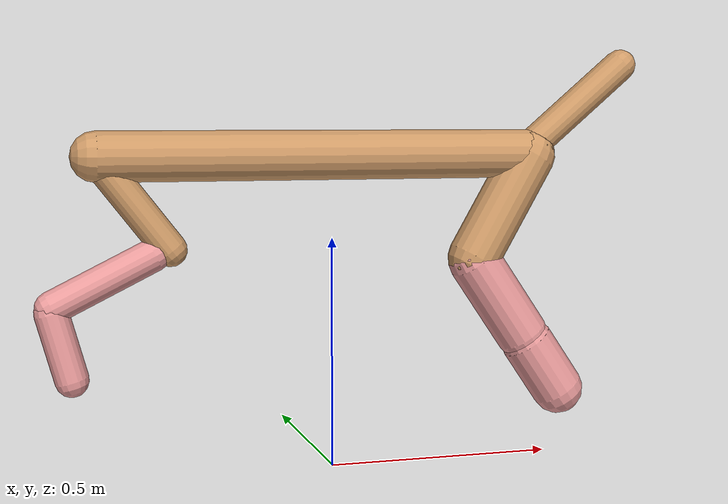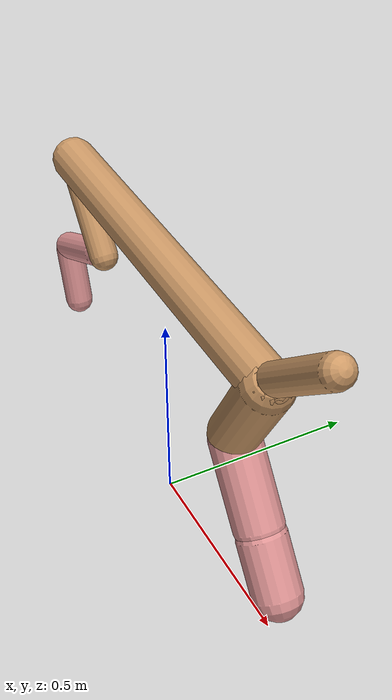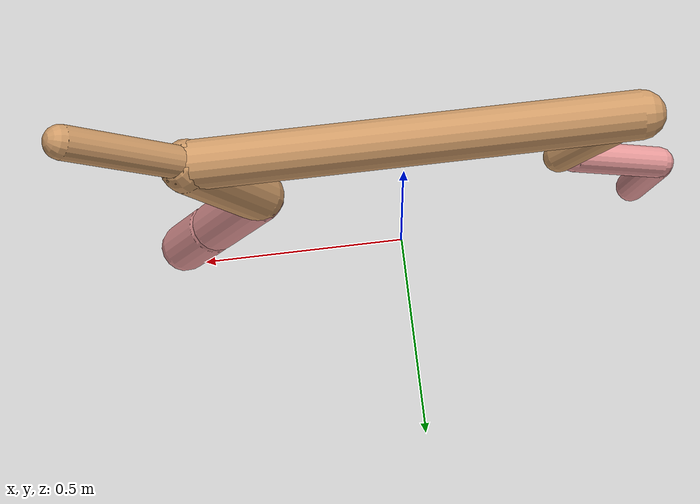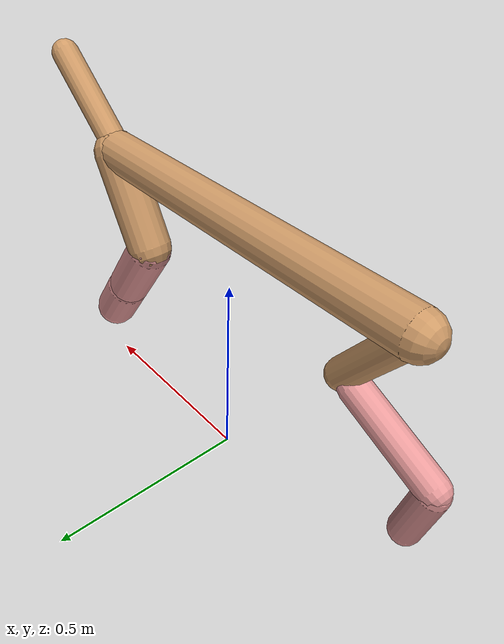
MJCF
<mujoco model="cheetah">
  <compiler angle="radian" coordinate="local" inertiafromgeom="true" settotalmass="14" />
  <default>
    <joint armature=".1" damping=".01" limited="true" solimplimit="0 .8 .03" solreflimit=".02 1" stiffness="8" />
    <geom conaffinity="0" condim="3" contype="1" friction="0.8 .1 .1" rgba="0.8 0.6 .4 1" solimp="0.0 0.8 0.01" solref="0.02 1" />
    <motor ctrllimited="true" ctrlrange="-1 1" />
  </default>
  <size nstack="300000" nuser_geom="1" />
  <option gravity="0 0 -9.81" timestep="0.01" />
  <worldbody>
    <body name="torso" pos="0.0 0.0 0.679907970635568">
      <joint armature="0" axis="1 0 0" damping="0" limited="false" name="ignorex" pos="0 0 0" stiffness="0" type="slide" />
      <joint armature="0" axis="0 0 1" damping="0" limited="false" name="ignorez" pos="0 0 0" stiffness="0" type="slide" />
      <joint armature="0" axis="0 1 0" damping="0" limited="false" name="ignorey" pos="0 0 0" stiffness="0" type="hinge" />
      <geom fromto="-0.5 0.0 0.0 0.460046841493455 0.0 0.0" name="torso" size="0.05325839753009844" type="capsule" />
      <geom axisangle="0 1 0 .87" name="head" pos="0.560046841493455 0.0 0.1" size="0.03560775728049191 0.15" type="capsule" />

      <body name="bthigh" pos="-.5 0 0">
        <joint axis="0 1 0" damping="6" name="bthigh" pos="0 0 0" range="-.52 1.05" stiffness="240" type="hinge" />
        <geom axisangle="0 1 0 -3.8" name="bthigh" pos="0.08108811016414869 0.0 -0.10541454321339327" size="0.03560832698342792 0.11398219442691852" type="capsule" />
        <body name="bshin" pos="0.12217622032829736 0.0 -0.20082908642678654">
          <joint axis="0 1 0" damping="4.5" name="bshin" pos="0 0 0" range="-.785 .785" stiffness="180" type="hinge" />
          <geom axisangle="0 1 0 -2.03" name="bshin" pos="-0.11130017030029712 0.0 -0.05565008515014856" rgba="0.9 0.6 0.6 1" size="0.03560832698342792 0.11791261492439847" type="capsule" />
          <body name="bfoot" pos="-0.22260034060059425 0.0 -0.11130017030029712">
            <joint axis="0 1 0" damping="3" name="bfoot" pos="0 0 0" range="-.4 .785" stiffness="120" type="hinge" />
            <geom axisangle="0 1 0 -.27" name="bfoot" pos="0.02405866684604882 0.0 -0.0777896894688912" rgba="0.9 0.6 0.6 1" size="0.03560832698342792 0.07389190535262305" type="capsule" />
            <inertial mass="10" />
          </body>
        </body>
      </body>
      <body name="fthigh" pos="0.460046841493455 0.0 0.0">
        <joint axis="0 1 0" damping="4.5" name="fthigh" pos="0 0 0" range="-1.5 0.8" stiffness="180" type="hinge" />
        <geom axisangle="0 1 0 .52" name="fthigh" pos="-0.06859156457990034 0.0 -0.11758553927982913" size="0.058078828197245067 0.1302047699733583" type="capsule" />
        <body name="fshin" pos="-0.1371831291598007 0.0 -0.23517107855965827">
          <joint axis="0 1 0" damping="3" name="fshin" pos="0 0 0" range="-1.2 1.1" stiffness="120" type="hinge" />
          <geom axisangle="0 1 0 -.6" name="fshin" pos="0.06369565742631123 0.0 -0.08819398720566168" rgba="0.9 0.6 0.6 1" size="0.058078828197245067 0.10377222268553368" type="capsule" />
          <body name="ffoot" pos="0.12739131485262245 0.0 -0.17638797441132337">
            <joint axis="0 1 0" damping="1.5" name="ffoot" pos="0 0 0" range="-3.1 -0.3" stiffness="60" type="hinge" />
            <geom axisangle="0 1 0 -.6" name="ffoot" pos="0.04420445165454004 0.0 -0.06876248035150673" rgba="0.9 0.6 0.6 1" size="0.058078828197245067 0.06852882630176754" type="capsule" />
            <inertial mass="10" />
          </body>
        </body>
      </body>
    </body>
  </worldbody>
  <actuator>
    <motor gear="120" joint="bthigh" name="bthigh" />
    <motor gear="90" joint="bshin" name="bshin" />
    <motor gear="60" joint="bfoot" name="bfoot" />
    <motor gear="120" joint="fthigh" name="fthigh" />
    <motor gear="60" joint="fshin" name="fshin" />
    <motor gear="30" joint="ffoot" name="ffoot" />
  </actuator>
</mujoco>
